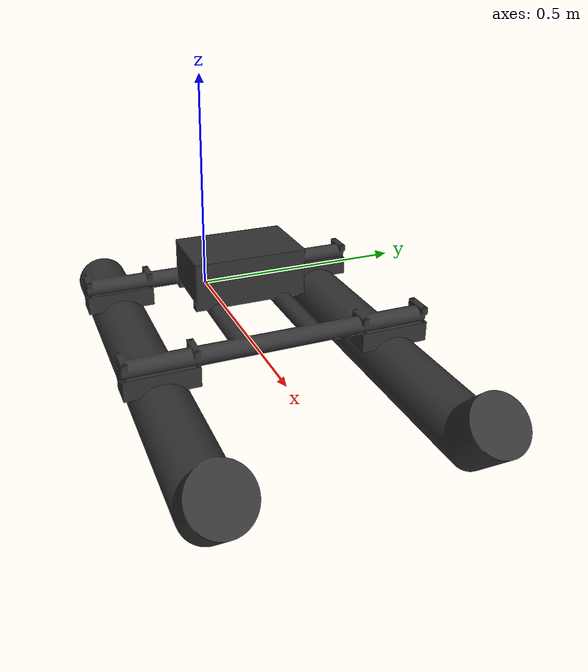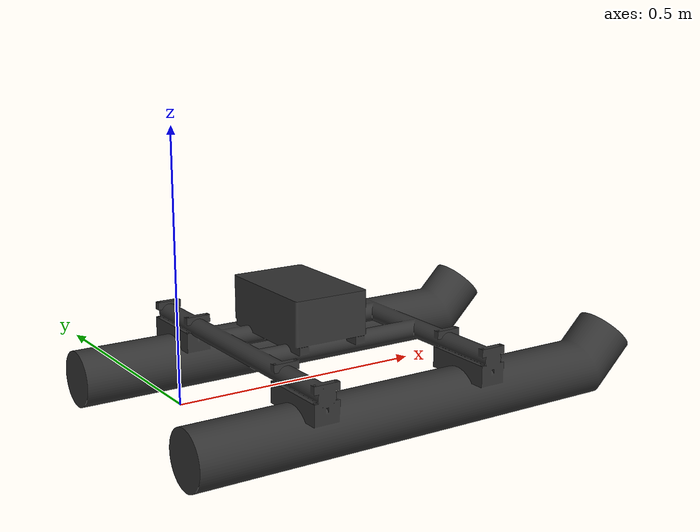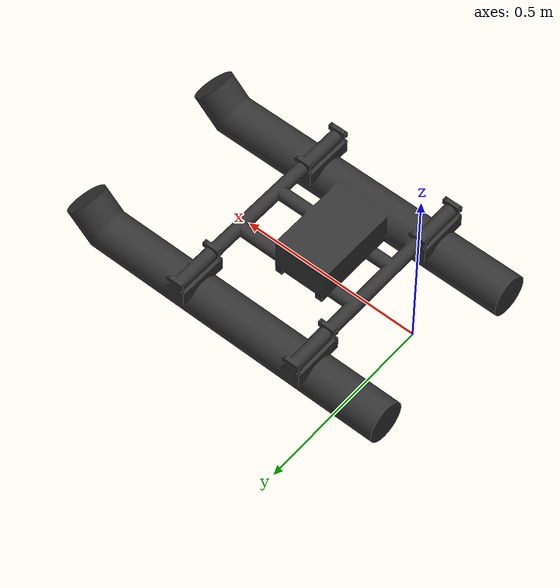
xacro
<?xml version="1.0"?>

<robot name="usv" xmlns:xacro="http://ros.org/wiki/xacro">

    <link name="base_link">
        <visual>
            <origin xyz="0 0 0" rpy="0 0 0"/>
            <geometry>
                <mesh filename="package://usv_description/meshes/usv.stl" scale="1 1 1"/>
            </geometry>
            <material name="Grey">
                <color rgba="0.2 0.2 0.2 1"/>
            </material>
        </visual>
    </link>

    <joint name="imu_joint" type="fixed">
        <parent link="base_link"/>
        <child link="imu_link"/>
        <origin xyz="0.3 0.09 0.2"/>
    </joint>

    <link name="imu_link"/>

    <joint name="gps_joint" type="fixed">
        <parent link="base_link"/>
        <child link="gps_link"/>
        <origin xyz="0.25 0.0 0.2"/>
    </joint>

    <link name="gps_link"/>

    <joint name="cam_joint" type="fixed">
        <parent link="base_link"/>
        <child link="cam_link"/>
        <origin xyz="0.3 0.0 0.2"/>
    </joint>

    <link name="cam_link"/>

</robot>
